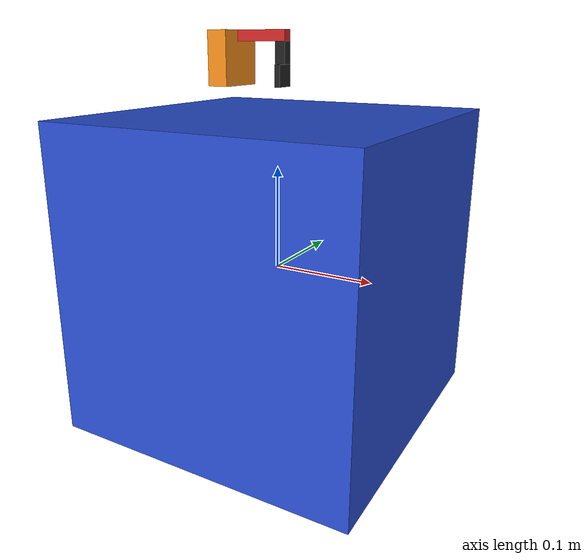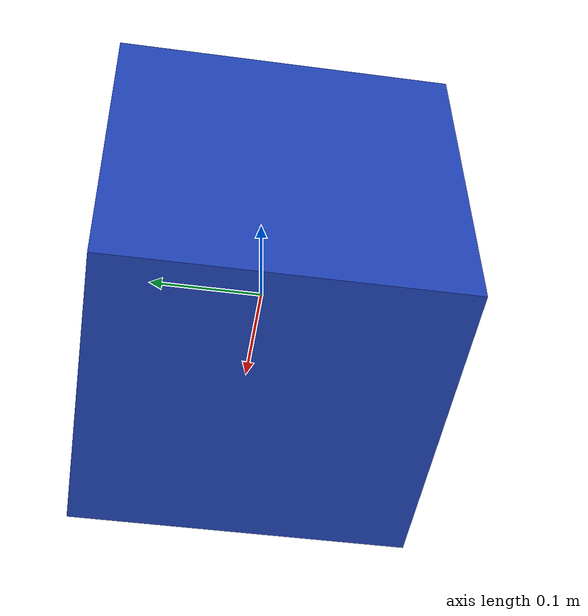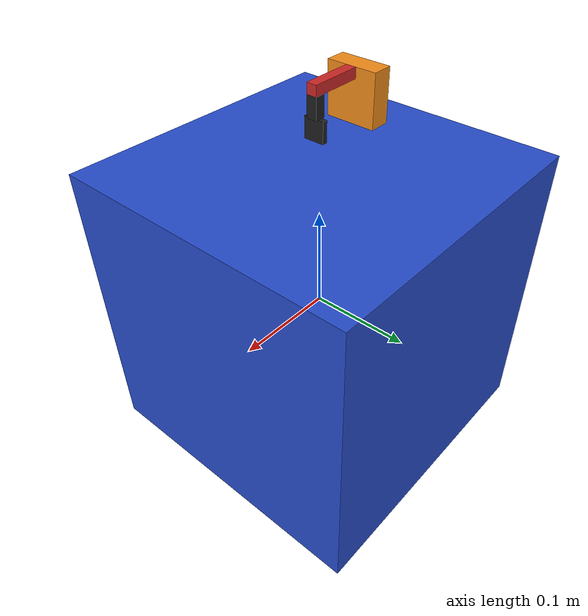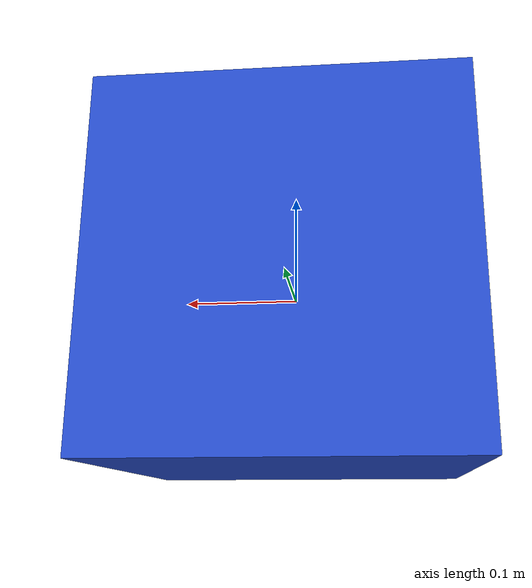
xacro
<?xml version="1.0"?>

<robot name="quadrotor" xmlns:xacro="http://ros.org/wiki/xacro">

    <link name="base_link">
      <inertial>
        <origin xyz="0 0 0" rpy="0 0 0" />
        <mass value="10" />
        <xacro:inertia_cuboid mass="10" x_length=".3" y_length=".3" z_length=".3" />
      </inertial>
      <visual>
        <origin xyz="0 0 0" rpy="0 0 0" />
        <geometry>
          <box size=".3 .3 .3"/>
        </geometry>
      </visual>
      <collision>
        <origin xyz="0 0 0" rpy="0 0 0" />
        <geometry>
          <box size=".3 .3 .3"/>
        </geometry>
      </collision>
    </link>
    <gazebo reference="base_link">
      <material>Gazebo/Blue</material>
      <mu1>1.1</mu1>
      <mu2>1.1</mu2>
    </gazebo>

    <!-- Kinect -->

    <!-- Gimbal -->
    <xacro:include filename="$(find quad_flight)/urdf/camera_gimbal.urdf.xacro" />
    <xacro:camera_gimbal parent="base_link" gimbal_yaw_min="-100" gimbal_yaw_max="+100" gimbal_pitch_min="-100" gimbal_pitch_max="+100" xyz="-0.05 0 0.2"/>

    <!-- Instantiate quadrotor_base_macro once (has no parameters atm) -->

</robot>

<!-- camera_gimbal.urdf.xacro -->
<robot xmlns:xacro="http://www.ros.org/wiki/xacro">

  <xacro:include filename="$(find quad_flight)/urdf/utils.xacro" />

  <xacro:property name="PI" value="3.1415926535897931"/>

  <xacro:property name="effort_limit" value="0.5" />
  <xacro:property name="velocity_limit" value="0.1" />
  <xacro:property name="damping" value="0.3" />
  <xacro:property name="friction" value="0.0" />
  <xacro:property name="gimbal_yaw_min" value="-30" />
  <xacro:property name="gimbal_yaw_max" value="+30" />
  <xacro:property name="gimbal_pitch_min" value="-30" />
  <xacro:property name="gimbal_pitch_max" value="+30" />

  <xacro:property name="mass_base" value="5" />
  <xacro:property name="mass_gimbal_arm" value="3" />
  <xacro:property name="mass_gimbal_yaw" value="2" />
  <xacro:property name="mass_pad" value="1" />
  <xacro:property name="base_width" value=".05" />
  <xacro:property name="base_depth" value=".02" />
  <xacro:property name="base_height" value=".05" />
  <xacro:property name="gimbal_arm_width" value="0.01" />
  <xacro:property name="gimbal_arm_length" value="0.05" />
  <xacro:property name="yaw_joint_width" value="${gimbal_arm_width}" />
  <xacro:property name="yaw_joint_length" value="0.02" />
  <xacro:property name="pad_width" value="0.02" />
  <xacro:property name="pad_height" value="0.02" />
  <xacro:property name="pad_depth" value="0.005" />

  <xacro:macro name="camera_gimbal" params="parent gimbal_yaw_min gimbal_yaw_max gimbal_pitch_min gimbal_pitch_max xyz">

    <xacro:include filename="$(find quad_flight)/urdf/materials.xacro" />

    <joint name="gimbal_base_joint" type="fixed">
      <parent link="${parent}"/>
      <child link="gimbal_base"/>
      <origin xyz="${xyz}"/>
      <axis xyz="0 0 1" />
    </joint>

    <link name="gimbal_base">
      <!-- Base -->

      <visual>
        <origin xyz="0 0 0" rpy="0 0 0"/>
        <geometry>
          <box size="${base_depth} ${base_width} ${base_height}"/>
        </geometry>
        <material name="orange"/>
      </visual>

      <inertial>
        <origin xyz="0 0 0" rpy="0 0 0"/>
        <mass value="${mass_base}"/>
        <xacro:inertia_cuboid mass="${mass_base}" x_length="${base_depth}" y_length="${base_width}" z_length="${base_height}" />
      </inertial>

      <!-- Cylinder -->

      <visual>
        <origin xyz="${base_depth/2 + gimbal_arm_length/2} 0 ${base_height/2 - gimbal_arm_width/2}" rpy="0 0 0"/>
        <geometry>
          <box size="${gimbal_arm_length} ${gimbal_arm_width} ${gimbal_arm_width}" />
        </geometry>
        <material name="red"/>
      </visual>

      <inertial>
        <origin xyz="${base_depth/2 + gimbal_arm_length/2} 0 ${base_height/2 - gimbal_arm_width/2}" rpy="0 0 0"/>
        <mass value="${mass_gimbal_arm}"/>
        <xacro:inertia_cuboid mass="${mass_gimbal_arm}" x_length="${gimbal_arm_length}" y_length="${gimbal_arm_width}" z_length="${gimbal_arm_width}" />
      </inertial>
    </link>

    <joint name="gimbal_yaw_joint" type="revolute">
      <parent link="gimbal_base"/>
      <child link="gimbal_yaw"/>
      <origin xyz="${base_depth/2 + gimbal_arm_length - yaw_joint_width/2} 0 ${base_height/2 - gimbal_arm_width}"/>
      <axis xyz="0 0 1"/>
      <dynamics damping="${damping}" friction="${friction}"/>
      <limit effort="${effort_limit}" velocity="${velocity_limit}" lower="${-90 / 180. * PI}" upper="${+90 / 180. * PI}" />
    </joint>

    <link name="gimbal_yaw">
      <inertial>
        <origin xyz="0 0 ${-yaw_joint_length/2}" rpy="0 0 ${0.5*PI}"/>
        <mass value="${mass_gimbal_yaw}"/>
        <xacro:inertia_cuboid mass="${mass_gimbal_yaw}" x_length="${yaw_joint_width}" y_length="${yaw_joint_width}" z_length="${yaw_joint_length}" />
      </inertial>
      <!-- Only for checking the joint -->
      <visual>
        <origin xyz="0 0 ${-yaw_joint_length/2}" rpy="0 0 ${0.5*PI}"/>
        <geometry>
          <box size="${yaw_joint_width} ${yaw_joint_width} ${yaw_joint_length}" />
        </geometry>
        <material name="black"/>
      </visual>
    </link>

    <joint name="gimbal_pitch_joint" type="fixed">
      <parent link="gimbal_yaw"/>
      <child link="gimbal_pad"/>
      <origin xyz="0 0 ${-yaw_joint_length}" rpy="0 0 0"/>
      <axis xyz="0 1 0"/>
    </joint>

    <link name="gimbal_pad">

      <visual>
        <origin xyz="0 0 ${-pad_height/2}" rpy="0 0 0"/>
        <geometry>
          <box size="${pad_depth} ${pad_width} ${pad_height}"/>
        </geometry>
        <material name="black"/>
      </visual>

      <inertial>
        <origin xyz="0 0 ${-pad_height/2}" rpy="0 0 0"/>
        <mass value="${mass_pad}"/>
        <xacro:inertia_cuboid mass="${mass_pad}" x_length="${pad_depth}" y_length="${pad_width}" z_length="${pad_height}" />
      </inertial>
    </link>

    <transmission name="gimbal_pitch_tran">
      <type>transmission_interface/SimpleTransmission</type>
      <joint name="gimbal_pitch_joint">
        <hardwareInterface>EffortJointInterface</hardwareInterface>
      </joint>
      <actuator name="gimbal_pitch_motor">
        <hardwareInterface>EffortJointInterface</hardwareInterface>
        <mechanicalReduction>1</mechanicalReduction>
      </actuator>
    </transmission>

    <transmission name="gimbal_yaw_tran">
      <type>transmission_interface/SimpleTransmission</type>
      <joint name="gimbal_yaw_joint">
        <hardwareInterface>EffortJointInterface</hardwareInterface>
      </joint>
      <actuator name="gimbal_yaw_motor">
        <hardwareInterface>EffortJointInterface</hardwareInterface>
        <mechanicalReduction>1</mechanicalReduction>
      </actuator>
    </transmission>

    <gazebo>
      <plugin name="gazebo_ros_control" filename="libgazebo_ros_control.so">
        <robotNamespace>/quadrotor</robotNamespace>
        <robotSimType>gazebo_ros_control/DefaultRobotHWSim</robotSimType>
      </plugin>
    </gazebo>

    <gazebo reference="gimbal_base">
      <material>Gazebo/Orange</material>
    </gazebo>

    <gazebo reference="gimbal_pad">
      <mu1>0.2</mu1>
      <mu2>0.2</mu2>
      <material>Gazebo/Black</material>
    </gazebo>

    <gazebo reference="gimbal_yaw">
      <mu1>0.2</mu1>
      <mu2>0.2</mu2>
      <material>Gazebo/Orange</material>
    </gazebo>

  </xacro:macro>

</robot>

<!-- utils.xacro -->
<robot xmlns:xacro="http://www.ros.org/wiki/xacro">

    <macro name="inertia_sphere" params="mass radius">
        <inertia ixx="${(2/5) * mass* radius * radius}" ixy="0.0" ixz="0.0"
                 iyy="${(2/5) * mass* radius * radius}" iyz="0.0"
                 izz="${(2/5) * mass* radius * radius}" />
    </macro>

    <macro name="inertial_sphere" params="mass radius">
      <inertial>
        <mass value="${mass}" />
        <origin xyz="0 0 0" />
        <xacro:inertia_sphere mass="${mass}" radius="${radius}" />
      </inertial>
    </macro>

    <macro name="inertia_cuboid" params="mass x_length y_length z_length">
        <inertia ixx="${(1/12) * mass * (y_length*y_length + z_length*z_length)}" ixy="0.0" ixz="0.0"
                 iyy="${(1/12) * mass * (x_length*x_length + z_length*z_length)}" iyz="0.0"
                 izz="${(1/12) * mass * (x_length*x_length + y_length*y_length)}" />
    </macro>

    <macro name="inertial_cuboid" params="mass x_length y_length z_length">
      <inertial>
        <mass value="${mass}" />
        <origin xyz="0 0 0" />
        <xacro:inertia_cuboid mass="${mass}" x_length="${x_length}" y_length="${y_length}" z_length="${z_length}" />
      </inertial>
    </macro>

    <macro name="inertia_cylinder" params="mass height radius">
        <inertia ixx="${(1/12) * mass* (3*radius*radius + height*height)}" ixy="0.0" ixz="0.0"
                 iyy="${(1/12) * mass* radius*radius}" iyz="0.0"
                 izz="${(1/2) * mass* radius*radius}" />
    </macro>

    <macro name="inertial_cylinder" params="mass height radius">
      <inertial>
        <mass value="${mass}" />
        <origin xyz="0 0 0" />
        <xacro:inertia_cylinder mass="${mass}" height="${height}" radius="${radius}" />
      </inertial>
    </macro>

</robot>
